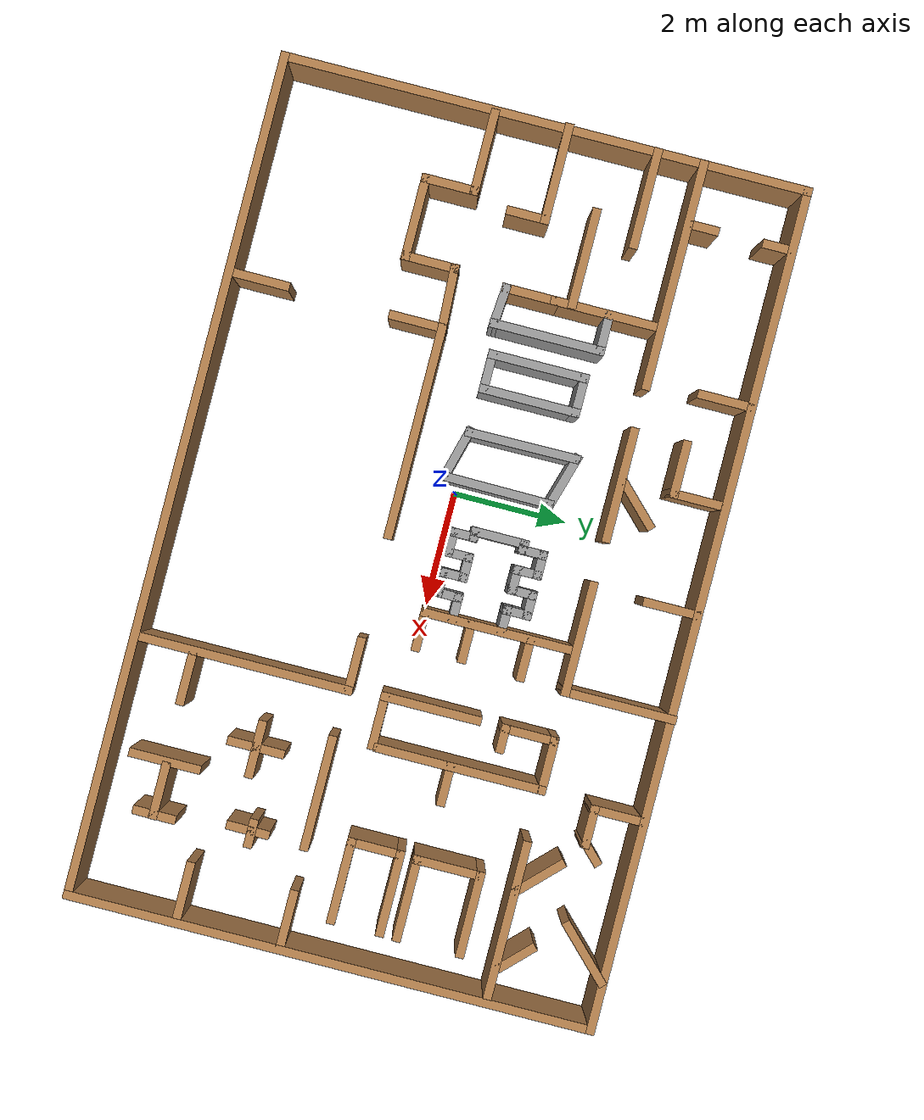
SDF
<sdf version="1.6">
 <model name="room">
  <pose>0.8955 -0.0675 0 0 -0 0</pose>
  <link name="Wall_102">
   <collision name="Wall_102_Collision">
    <geometry><box><size>1.25 0.15 2.5</size></box></geometry>
    <pose>0 0 1.25 0 -0 0</pose>
   </collision>
   <visual name="Wall_102_Visual">
    <pose>0 0 1.25 0 -0 0</pose>
    <geometry><box><size>1.25 0.15 2.5</size></box></geometry>
    <material>
     <script><uri>file://media/materials/scripts/gazebo.material</uri><name>Gazebo/Wood</name></script>
     <ambient>1 1 1 1</ambient>
    </material>
    <meta><layer>0</layer></meta>
   </visual>
   <pose>6.0995 4.1165 0 0 -0 -2.35619</pose>
  </link>
  <link name="Wall_104">
   <collision name="Wall_104_Collision">
    <geometry><box><size>1 0.15 2.5</size></box></geometry>
    <pose>0 0 1.25 0 -0 0</pose>
   </collision>
   <visual name="Wall_104_Visual">
    <pose>0 0 1.25 0 -0 0</pose>
    <geometry><box><size>1 0.15 2.5</size></box></geometry>
    <material>
     <script><uri>file://media/materials/scripts/gazebo.material</uri><name>Gazebo/Wood</name></script>
     <ambient>1 1 1 1</ambient>
    </material>
    <meta><layer>0</layer></meta>
   </visual>
   <pose>5.044 3.057 0 0 -0 2.35619</pose>
  </link>
  <link name="Wall_107">
   <collision name="Wall_107_Collision">
    <geometry><box><size>0.75 0.15 2.5</size></box></geometry>
    <pose>0 0 1.25 0 -0 0</pose>
   </collision>
   <visual name="Wall_107_Visual">
    <pose>0 0 1.25 0 -0 0</pose>
    <geometry><box><size>0.75 0.15 2.5</size></box></geometry>
    <material>
     <script><uri>file://media/materials/scripts/gazebo.material</uri><name>Gazebo/Wood</name></script>
     <ambient>1 1 1 1</ambient>
    </material>
    <meta><layer>0</layer></meta>
   </visual>
   <pose>6.4485 3.0245 0 0 -0 -0.785398</pose>
  </link>
  <link name="Wall_11">
   <collision name="Wall_11_Collision">
    <geometry><box><size>0.5 0.15 2.5</size></box></geometry>
    <pose>0 0 1.25 0 -0 0</pose>
   </collision>
   <visual name="Wall_11_Visual">
    <pose>0 0 1.25 0 -0 0</pose>
    <geometry><box><size>0.5 0.15 2.5</size></box></geometry>
    <material>
     <script><uri>file://media/materials/scripts/gazebo.material</uri><name>Gazebo/Wood</name></script>
     <ambient>0.921569 0.807843 0.615686 1</ambient>
    </material>
    <meta><layer>0</layer></meta>
   </visual>
   <pose>-6.2495 4.2745 0 0 -0 1.5708</pose>
  </link>
  <link name="Wall_112">
   <collision name="Wall_112_Collision">
    <geometry><box><size>0.5 0.15 2.5</size></box></geometry>
    <pose>0 0 1.25 0 -0 0</pose>
   </collision>
   <visual name="Wall_112_Visual">
    <pose>0 0 1.25 0 -0 0</pose>
    <geometry><box><size>0.5 0.15 2.5</size></box></geometry>
    <material>
     <script><uri>file://media/materials/scripts/gazebo.material</uri><name>Gazebo/Wood</name></script>
     <ambient>1 1 1 1</ambient>
    </material>
    <meta><layer>0</layer></meta>
   </visual>
   <pose>2.9305 1.8815 0 0 -0 0</pose>
  </link>
  <link name="Wall_115">
   <collision name="Wall_115_Collision">
    <geometry><box><size>0.75 0.15 2.5</size></box></geometry>
    <pose>0 0 1.25 0 -0 0</pose>
   </collision>
   <visual name="Wall_115_Visual">
    <pose>0 0 1.25 0 -0 0</pose>
    <geometry><box><size>0.75 0.15 2.5</size></box></geometry>
    <material>
     <script><uri>file://media/materials/scripts/gazebo.material</uri><name>Gazebo/Wood</name></script>
     <ambient>1 1 1 1</ambient>
    </material>
    <meta><layer>0</layer></meta>
   </visual>
   <pose>3.9985 3.6755 0 0 -0 0</pose>
  </link>
  <link name="Wall_116">
   <collision name="Wall_116_Collision">
    <geometry><box><size>0.5 0.15 2.5</size></box></geometry>
    <pose>0 0 1.25 0 -0 0</pose>
   </collision>
   <visual name="Wall_116_Visual">
    <pose>0 0 1.25 0 -0 0</pose>
    <geometry><box><size>0.5 0.15 2.5</size></box></geometry>
    <material>
     <script><uri>file://media/materials/scripts/gazebo.material</uri><name>Gazebo/Wood</name></script>
     <ambient>1 1 1 1</ambient>
    </material>
    <meta><layer>0</layer></meta>
   </visual>
   <pose>4.422 3.799 0 0 -0 0.785398</pose>
  </link>
  <link name="Wall_118">
   <collision name="Wall_118_Collision">
    <geometry><box><size>2 0.15 2.5</size></box></geometry>
    <pose>0 0 1.25 0 -0 0</pose>
   </collision>
   <visual name="Wall_118_Visual">
    <pose>0 0 1.25 0 -0 0</pose>
    <geometry><box><size>2 0.15 2.5</size></box></geometry>
    <material>
     <script><uri>file://media/materials/scripts/gazebo.material</uri><name>Gazebo/Grey</name></script>
     <ambient>1 1 1 1</ambient>
    </material>
    <meta><layer>0</layer></meta>
   </visual>
   <pose>-1.93559 0.967643 0 0 -0 -1.56262</pose>
  </link>
  <link name="Wall_119">
   <collision name="Wall_119_Collision">
    <geometry><box><size>1 0.15 2.5</size></box></geometry>
    <pose>0 0 1.25 0 -0 0</pose>
   </collision>
   <visual name="Wall_119_Visual">
    <pose>0 0 1.25 0 -0 0</pose>
    <geometry><box><size>1 0.15 2.5</size></box></geometry>
    <material>
     <script><uri>file://media/materials/scripts/gazebo.material</uri><name>Gazebo/Grey</name></script>
     <ambient>1 1 1 1</ambient>
    </material>
    <meta><layer>0</layer></meta>
   </visual>
   <pose>-1.53264 -0.067355 0 0 -0 -0.261799</pose>
  </link>
  <link name="Wall_120">
   <collision name="Wall_120_Collision">
    <geometry><box><size>1.97005 0.15 2.5</size></box></geometry>
    <pose>0 0 1.25 0 -0 0</pose>
   </collision>
   <visual name="Wall_120_Visual">
    <pose>0 0 1.25 0 -0 0</pose>
    <geometry><box><size>1.97005 0.15 2.5</size></box></geometry>
    <material>
     <script><uri>file://media/materials/scripts/gazebo.material</uri><name>Gazebo/Grey</name></script>
     <ambient>1 1 1 1</ambient>
    </material>
    <meta><layer>0</layer></meta>
   </visual>
   <pose>-1.10008 0.732645 0 0 -0 1.56319</pose>
  </link>
  <link name="Wall_121">
   <collision name="Wall_121_Collision">
    <geometry><box><size>1.036 0.15 2.5</size></box></geometry>
    <pose>0 0 1.25 0 -0 0</pose>
   </collision>
   <visual name="Wall_121_Visual">
    <pose>0 0 1.25 0 -0 0</pose>
    <geometry><box><size>1.036 0.15 2.5</size></box></geometry>
    <material>
     <script><uri>file://media/materials/scripts/gazebo.material</uri><name>Gazebo/Grey</name></script>
     <ambient>1 1 1 1</ambient>
    </material>
    <meta><layer>0</layer></meta>
   </visual>
   <pose>-1.51816 1.78277 0 0 -0 2.85554</pose>
  </link>
  <link name="Wall_123">
   <collision name="Wall_123_Collision">
    <geometry><box><size>0.75 0.15 2.5</size></box></geometry>
    <pose>0 0 1.25 0 -0 0</pose>
   </collision>
   <visual name="Wall_123_Visual">
    <pose>0 0 1.25 0 -0 0</pose>
    <geometry><box><size>0.75 0.15 2.5</size></box></geometry>
    <material>
     <script><uri>file://media/materials/scripts/gazebo.material</uri><name>Gazebo/Grey</name></script>
     <ambient>1 1 1 1</ambient>
    </material>
    <meta><layer>0</layer></meta>
   </visual>
   <pose>-4.10944 1.82992 0 0 -0 0</pose>
  </link>
  <link name="Wall_124">
   <collision name="Wall_124_Collision">
    <geometry><box><size>2 0.15 2.5</size></box></geometry>
    <pose>0 0 1.25 0 -0 0</pose>
   </collision>
   <visual name="Wall_124_Visual">
    <pose>0 0 1.25 0 -0 0</pose>
    <geometry><box><size>2 0.15 2.5</size></box></geometry>
    <material>
     <script><uri>file://media/materials/scripts/gazebo.material</uri><name>Gazebo/Grey</name></script>
     <ambient>1 1 1 1</ambient>
    </material>
    <meta><layer>0</layer></meta>
   </visual>
   <pose>-3.80944 0.904922 0 0 -0 -1.5708</pose>
  </link>
  <link name="Wall_127">
   <collision name="Wall_127_Collision">
    <geometry><box><size>0.777182 0.15 2.5</size></box></geometry>
    <pose>0 0 1.25 0 -0 0</pose>
   </collision>
   <visual name="Wall_127_Visual">
    <pose>0 0 1.25 0 -0 0</pose>
    <geometry><box><size>0.777182 0.15 2.5</size></box></geometry>
    <material>
     <script><uri>file://media/materials/scripts/gazebo.material</uri><name>Gazebo/Grey</name></script>
     <ambient>1 1 1 1</ambient>
    </material>
    <meta><layer>0</layer></meta>
   </visual>
   <pose>-4.12197 0.005711 0 0 -0 -0.082331</pose>
  </link>
  <link name="Wall_129">
   <collision name="Wall_129_Collision">
    <geometry><box><size>1.75 0.15 2.5</size></box></geometry>
    <pose>0 0 1.25 0 -0 0</pose>
   </collision>
   <visual name="Wall_129_Visual">
    <pose>0 0 1.25 0 -0 0</pose>
    <geometry><box><size>1.75 0.15 2.5</size></box></geometry>
    <material>
     <script><uri>file://media/materials/scripts/gazebo.material</uri><name>Gazebo/Grey</name></script>
     <ambient>1 1 1 1</ambient>
    </material>
    <meta><layer>0</layer></meta>
   </visual>
   <pose>-3.29698 0.889465 0 0 -0 -1.5708</pose>
  </link>
  <link name="Wall_13">
   <collision name="Wall_13_Collision">
    <geometry><box><size>0.5 0.15 2.5</size></box></geometry>
    <pose>0 0 1.25 0 -0 0</pose>
   </collision>
   <visual name="Wall_13_Visual">
    <pose>0 0 1.25 0 -0 0</pose>
    <geometry><box><size>0.5 0.15 2.5</size></box></geometry>
    <material>
     <script><uri>file://media/materials/scripts/gazebo.material</uri><name>Gazebo/Wood</name></script>
     <ambient>0.921569 0.807843 0.615686 1</ambient>
    </material>
    <meta><layer>0</layer></meta>
   </visual>
   <pose>-6.2495 3.0165 0 0 -0 -1.5708</pose>
  </link>
  <link name="Wall_130">
   <collision name="Wall_130_Collision">
    <geometry><box><size>0.75 0.15 2.5</size></box></geometry>
    <pose>0 0 1.25 0 -0 0</pose>
   </collision>
   <visual name="Wall_130_Visual">
    <pose>0 0 1.25 0 -0 0</pose>
    <geometry><box><size>0.75 0.15 2.5</size></box></geometry>
    <material>
     <script><uri>file://media/materials/scripts/gazebo.material</uri><name>Gazebo/Grey</name></script>
     <ambient>1 1 1 1</ambient>
    </material>
    <meta><layer>0</layer></meta>
   </visual>
   <pose>-2.99698 0.089465 0 0 -0 0</pose>
  </link>
  <link name="Wall_131">
   <collision name="Wall_131_Collision">
    <geometry><box><size>1.75 0.15 2.5</size></box></geometry>
    <pose>0 0 1.25 0 -0 0</pose>
   </collision>
   <visual name="Wall_131_Visual">
    <pose>0 0 1.25 0 -0 0</pose>
    <geometry><box><size>1.75 0.15 2.5</size></box></geometry>
    <material>
     <script><uri>file://media/materials/scripts/gazebo.material</uri><name>Gazebo/Grey</name></script>
     <ambient>1 1 1 1</ambient>
    </material>
    <meta><layer>0</layer></meta>
   </visual>
   <pose>-2.69698 0.889465 0 0 -0 1.5708</pose>
  </link>
  <link name="Wall_132">
   <collision name="Wall_132_Collision">
    <geometry><box><size>0.75 0.15 2.5</size></box></geometry>
    <pose>0 0 1.25 0 -0 0</pose>
   </collision>
   <visual name="Wall_132_Visual">
    <pose>0 0 1.25 0 -0 0</pose>
    <geometry><box><size>0.75 0.15 2.5</size></box></geometry>
    <material>
     <script><uri>file://media/materials/scripts/gazebo.material</uri><name>Gazebo/Grey</name></script>
     <ambient>1 1 1 1</ambient>
    </material>
    <meta><layer>0</layer></meta>
   </visual>
   <pose>-2.99698 1.68946 0 0 -0 3.14159</pose>
  </link>
  <link name="Wall_134">
   <collision name="Wall_134_Collision">
    <geometry><box><size>0.5 0.15 2.5</size></box></geometry>
    <pose>0 0 1.25 0 -0 0</pose>
   </collision>
   <visual name="Wall_134_Visual">
    <pose>0 0 1.25 0 -0 0</pose>
    <geometry><box><size>0.5 0.15 2.5</size></box></geometry>
    <material>
     <script><uri>file://media/materials/scripts/gazebo.material</uri><name>Gazebo/Grey</name></script>
     <ambient>1 1 1 1</ambient>
    </material>
    <meta><layer>0</layer></meta>
   </visual>
   <pose>-0.236104 1.58364 0 0 -0 -1.5708</pose>
  </link>
  <link name="Wall_135">
   <collision name="Wall_135_Collision">
    <geometry><box><size>0.25 0.15 2.5</size></box></geometry>
    <pose>0 0 1.25 0 -0 0</pose>
   </collision>
   <visual name="Wall_135_Visual">
    <pose>0 0 1.25 0 -0 0</pose>
    <geometry><box><size>0.25 0.15 2.5</size></box></geometry>
    <material>
     <script><uri>file://media/materials/scripts/gazebo.material</uri><name>Gazebo/Grey</name></script>
     <ambient>1 1 1 1</ambient>
    </material>
    <meta><layer>0</layer></meta>
   </visual>
   <pose>-0.286104 1.40864 0 0 -0 3.14159</pose>
  </link>
  <link name="Wall_136">
   <collision name="Wall_136_Collision">
    <geometry><box><size>1 0.15 2.5</size></box></geometry>
    <pose>0 0 1.25 0 -0 0</pose>
   </collision>
   <visual name="Wall_136_Visual">
    <pose>0 0 1.25 0 -0 0</pose>
    <geometry><box><size>1 0.15 2.5</size></box></geometry>
    <material>
     <script><uri>file://media/materials/scripts/gazebo.material</uri><name>Gazebo/Grey</name></script>
     <ambient>1 1 1 1</ambient>
    </material>
    <meta><layer>0</layer></meta>
   </visual>
   <pose>-0.336104 0.983637 0 0 -0 -1.5708</pose>
  </link>
  <link name="Wall_137">
   <collision name="Wall_137_Collision">
    <geometry><box><size>0.25 0.15 2.5</size></box></geometry>
    <pose>0 0 1.25 0 -0 0</pose>
   </collision>
   <visual name="Wall_137_Visual">
    <pose>0 0 1.25 0 -0 0</pose>
    <geometry><box><size>0.25 0.15 2.5</size></box></geometry>
    <material>
     <script><uri>file://media/materials/scripts/gazebo.material</uri><name>Gazebo/Grey</name></script>
     <ambient>1 1 1 1</ambient>
    </material>
    <meta><layer>0</layer></meta>
   </visual>
   <pose>-0.286104 0.558637 0 0 -0 0</pose>
  </link>
  <link name="Wall_138">
   <collision name="Wall_138_Collision">
    <geometry><box><size>0.5 0.15 2.5</size></box></geometry>
    <pose>0 0 1.25 0 -0 0</pose>
   </collision>
   <visual name="Wall_138_Visual">
    <pose>0 0 1.25 0 -0 0</pose>
    <geometry><box><size>0.5 0.15 2.5</size></box></geometry>
    <material>
     <script><uri>file://media/materials/scripts/gazebo.material</uri><name>Gazebo/Grey</name></script>
     <ambient>1 1 1 1</ambient>
    </material>
    <meta><layer>0</layer></meta>
   </visual>
   <pose>-0.236104 0.383637 0 0 -0 -1.5708</pose>
  </link>
  <link name="Wall_139">
   <collision name="Wall_139_Collision">
    <geometry><box><size>0.5 0.15 2.5</size></box></geometry>
    <pose>0 0 1.25 0 -0 0</pose>
   </collision>
   <visual name="Wall_139_Visual">
    <pose>0 0 1.25 0 -0 0</pose>
    <geometry><box><size>0.5 0.15 2.5</size></box></geometry>
    <material>
     <script><uri>file://media/materials/scripts/gazebo.material</uri><name>Gazebo/Grey</name></script>
     <ambient>1 1 1 1</ambient>
    </material>
    <meta><layer>0</layer></meta>
   </visual>
   <pose>-0.061104 0.208637 0 0 -0 0</pose>
  </link>
  <link name="Wall_140">
   <collision name="Wall_140_Collision">
    <geometry><box><size>0.5 0.15 2.5</size></box></geometry>
    <pose>0 0 1.25 0 -0 0</pose>
   </collision>
   <visual name="Wall_140_Visual">
    <pose>0 0 1.25 0 -0 0</pose>
    <geometry><box><size>0.5 0.15 2.5</size></box></geometry>
    <material>
     <script><uri>file://media/materials/scripts/gazebo.material</uri><name>Gazebo/Grey</name></script>
     <ambient>1 1 1 1</ambient>
    </material>
    <meta><layer>0</layer></meta>
   </visual>
   <pose>0.113896 0.383637 0 0 -0 1.5708</pose>
  </link>
  <link name="Wall_141">
   <collision name="Wall_141_Collision">
    <geometry><box><size>0.5 0.15 2.5</size></box></geometry>
    <pose>0 0 1.25 0 -0 0</pose>
   </collision>
   <visual name="Wall_141_Visual">
    <pose>0 0 1.25 0 -0 0</pose>
    <geometry><box><size>0.5 0.15 2.5</size></box></geometry>
    <material>
     <script><uri>file://media/materials/scripts/gazebo.material</uri><name>Gazebo/Grey</name></script>
     <ambient>1 1 1 1</ambient>
    </material>
    <meta><layer>0</layer></meta>
   </visual>
   <pose>0.288896 0.558637 0 0 -0 0</pose>
  </link>
  <link name="Wall_142">
   <collision name="Wall_142_Collision">
    <geometry><box><size>0.5 0.15 2.5</size></box></geometry>
    <pose>0 0 1.25 0 -0 0</pose>
   </collision>
   <visual name="Wall_142_Visual">
    <pose>0 0 1.25 0 -0 0</pose>
    <geometry><box><size>0.5 0.15 2.5</size></box></geometry>
    <material>
     <script><uri>file://media/materials/scripts/gazebo.material</uri><name>Gazebo/Grey</name></script>
     <ambient>1 1 1 1</ambient>
    </material>
    <meta><layer>0</layer></meta>
   </visual>
   <pose>0.463896 0.383637 0 0 -0 -1.5708</pose>
  </link>
  <link name="Wall_143">
   <collision name="Wall_143_Collision">
    <geometry><box><size>0.5 0.15 2.5</size></box></geometry>
    <pose>0 0 1.25 0 -0 0</pose>
   </collision>
   <visual name="Wall_143_Visual">
    <pose>0 0 1.25 0 -0 0</pose>
    <geometry><box><size>0.5 0.15 2.5</size></box></geometry>
    <material>
     <script><uri>file://media/materials/scripts/gazebo.material</uri><name>Gazebo/Grey</name></script>
     <ambient>1 1 1 1</ambient>
    </material>
    <meta><layer>0</layer></meta>
   </visual>
   <pose>0.638896 0.208637 0 0 -0 0</pose>
  </link>
  <link name="Wall_144">
   <collision name="Wall_144_Collision">
    <geometry><box><size>0.5 0.15 2.5</size></box></geometry>
    <pose>0 0 1.25 0 -0 0</pose>
   </collision>
   <visual name="Wall_144_Visual">
    <pose>0 0 1.25 0 -0 0</pose>
    <geometry><box><size>0.5 0.15 2.5</size></box></geometry>
    <material>
     <script><uri>file://media/materials/scripts/gazebo.material</uri><name>Gazebo/Grey</name></script>
     <ambient>1 1 1 1</ambient>
    </material>
    <meta><layer>0</layer></meta>
   </visual>
   <pose>0.813896 0.383637 0 0 -0 1.5708</pose>
  </link>
  <link name="Wall_145">
   <collision name="Wall_145_Collision">
    <geometry><box><size>0.5 0.15 2.5</size></box></geometry>
    <pose>0 0 1.25 0 -0 0</pose>
   </collision>
   <visual name="Wall_145_Visual">
    <pose>0 0 1.25 0 -0 0</pose>
    <geometry><box><size>0.5 0.15 2.5</size></box></geometry>
    <material>
     <script><uri>file://media/materials/scripts/gazebo.material</uri><name>Gazebo/Grey</name></script>
     <ambient>1 1 1 1</ambient>
    </material>
    <meta><layer>0</layer></meta>
   </visual>
   <pose>0.988896 0.558637 0 0 -0 0</pose>
  </link>
  <link name="Wall_147">
   <collision name="Wall_147_Collision">
    <geometry><box><size>0.5 0.15 2.5</size></box></geometry>
    <pose>0 0 1.25 0 -0 0</pose>
   </collision>
   <visual name="Wall_147_Visual">
    <pose>0 0 1.25 0 -0 0</pose>
    <geometry><box><size>0.5 0.15 2.5</size></box></geometry>
    <material>
     <script><uri>file://media/materials/scripts/gazebo.material</uri><name>Gazebo/Grey</name></script>
     <ambient>1 1 1 1</ambient>
    </material>
    <meta><layer>0</layer></meta>
   </visual>
   <pose>-0.061104 1.75864 0 0 -0 0</pose>
  </link>
  <link name="Wall_148">
   <collision name="Wall_148_Collision">
    <geometry><box><size>0.5 0.15 2.5</size></box></geometry>
    <pose>0 0 1.25 0 -0 0</pose>
   </collision>
   <visual name="Wall_148_Visual">
    <pose>0 0 1.25 0 -0 0</pose>
    <geometry><box><size>0.5 0.15 2.5</size></box></geometry>
    <material>
     <script><uri>file://media/materials/scripts/gazebo.material</uri><name>Gazebo/Grey</name></script>
     <ambient>1 1 1 1</ambient>
    </material>
    <meta><layer>0</layer></meta>
   </visual>
   <pose>0.113896 1.58364 0 0 -0 -1.5708</pose>
  </link>
  <link name="Wall_149">
   <collision name="Wall_149_Collision">
    <geometry><box><size>0.5 0.15 2.5</size></box></geometry>
    <pose>0 0 1.25 0 -0 0</pose>
   </collision>
   <visual name="Wall_149_Visual">
    <pose>0 0 1.25 0 -0 0</pose>
    <geometry><box><size>0.5 0.15 2.5</size></box></geometry>
    <material>
     <script><uri>file://media/materials/scripts/gazebo.material</uri><name>Gazebo/Grey</name></script>
     <ambient>1 1 1 1</ambient>
    </material>
    <meta><layer>0</layer></meta>
   </visual>
   <pose>0.288896 1.40864 0 0 -0 0</pose>
  </link>
  <link name="Wall_15">
   <collision name="Wall_15_Collision">
    <geometry><box><size>4 0.15 2.5</size></box></geometry>
    <pose>0 0 1.25 0 -0 0</pose>
   </collision>
   <visual name="Wall_15_Visual">
    <pose>0 0 1.25 0 -0 0</pose>
    <geometry><box><size>4 0.15 2.5</size></box></geometry>
    <material>
     <script><uri>file://media/materials/scripts/gazebo.material</uri><name>Gazebo/Wood</name></script>
     <ambient>0.921569 0.807843 0.615686 1</ambient>
    </material>
    <meta><layer>0</layer></meta>
   </visual>
   <pose>-5.3595 2.7315 0 0 -0 0</pose>
  </link>
  <link name="Wall_150">
   <collision name="Wall_150_Collision">
    <geometry><box><size>0.5 0.15 2.5</size></box></geometry>
    <pose>0 0 1.25 0 -0 0</pose>
   </collision>
   <visual name="Wall_150_Visual">
    <pose>0 0 1.25 0 -0 0</pose>
    <geometry><box><size>0.5 0.15 2.5</size></box></geometry>
    <material>
     <script><uri>file://media/materials/scripts/gazebo.material</uri><name>Gazebo/Grey</name></script>
     <ambient>1 1 1 1</ambient>
    </material>
    <meta><layer>0</layer></meta>
   </visual>
   <pose>0.463896 1.58364 0 0 -0 1.5708</pose>
  </link>
  <link name="Wall_151">
   <collision name="Wall_151_Collision">
    <geometry><box><size>0.5 0.15 2.5</size></box></geometry>
    <pose>0 0 1.25 0 -0 0</pose>
   </collision>
   <visual name="Wall_151_Visual">
    <pose>0 0 1.25 0 -0 0</pose>
    <geometry><box><size>0.5 0.15 2.5</size></box></geometry>
    <material>
     <script><uri>file://media/materials/scripts/gazebo.material</uri><name>Gazebo/Grey</name></script>
     <ambient>1 1 1 1</ambient>
    </material>
    <meta><layer>0</layer></meta>
   </visual>
   <pose>0.638896 1.75864 0 0 -0 0</pose>
  </link>
  <link name="Wall_152">
   <collision name="Wall_152_Collision">
    <geometry><box><size>0.5 0.15 2.5</size></box></geometry>
    <pose>0 0 1.25 0 -0 0</pose>
   </collision>
   <visual name="Wall_152_Visual">
    <pose>0 0 1.25 0 -0 0</pose>
    <geometry><box><size>0.5 0.15 2.5</size></box></geometry>
    <material>
     <script><uri>file://media/materials/scripts/gazebo.material</uri><name>Gazebo/Grey</name></script>
     <ambient>1 1 1 1</ambient>
    </material>
    <meta><layer>0</layer></meta>
   </visual>
   <pose>0.813896 1.58364 0 0 -0 -1.5708</pose>
  </link>
  <link name="Wall_153">
   <collision name="Wall_153_Collision">
    <geometry><box><size>0.5 0.15 2.5</size></box></geometry>
    <pose>0 0 1.25 0 -0 0</pose>
   </collision>
   <visual name="Wall_153_Visual">
    <pose>0 0 1.25 0 -0 0</pose>
    <geometry><box><size>0.5 0.15 2.5</size></box></geometry>
    <material>
     <script><uri>file://media/materials/scripts/gazebo.material</uri><name>Gazebo/Grey</name></script>
     <ambient>1 1 1 1</ambient>
    </material>
    <meta><layer>0</layer></meta>
   </visual>
   <pose>0.988896 1.40864 0 0 -0 0</pose>
  </link>
  <link name="Wall_157">
   <collision name="Wall_157_Collision">
    <geometry><box><size>1.17417 0.15 2.5</size></box></geometry>
    <pose>0 0 1.25 0 -0 0</pose>
   </collision>
   <visual name="Wall_157_Visual">
    <pose>0 0 1.25 0 -0 0</pose>
    <geometry><box><size>1.17417 0.15 2.5</size></box></geometry>
    <material>
     <script><uri>file://media/materials/scripts/gazebo.material</uri><name>Gazebo/Wood</name></script>
     <ambient>1 1 1 1</ambient>
    </material>
    <meta><layer>0</layer></meta>
   </visual>
   <pose>-4.027 -0.868 0 0 -0 -3.09373</pose>
  </link>
  <link name="Wall_159">
   <collision name="Wall_159_Collision">
    <geometry><box><size>1 0.15 2.5</size></box></geometry>
    <pose>0 0 1.25 0 -0 0</pose>
   </collision>
   <visual name="Wall_159_Visual">
    <pose>0 0 1.25 0 -0 0</pose>
    <geometry><box><size>1 0.15 2.5</size></box></geometry>
    <material>
     <script><uri>file://media/materials/scripts/gazebo.material</uri><name>Gazebo/Wood</name></script>
     <ambient>1 1 1 1</ambient>
    </material>
    <meta><layer>0</layer></meta>
   </visual>
   <pose>-3.5155 -1.2685 0 0 -0 -1.5708</pose>
  </link>
  <link name="Wall_161">
   <collision name="Wall_161_Collision">
    <geometry><box><size>1 0.15 2.5</size></box></geometry>
    <pose>0 0 1.25 0 -0 0</pose>
   </collision>
   <visual name="Wall_161_Visual">
    <pose>0 0 1.25 0 -0 0</pose>
    <geometry><box><size>1 0.15 2.5</size></box></geometry>
    <material>
     <script><uri>file://media/materials/scripts/gazebo.material</uri><name>Gazebo/Wood</name></script>
     <ambient>1 1 1 1</ambient>
    </material>
    <meta><layer>0</layer></meta>
   </visual>
   <pose>-3.5405 -4.0025 0 0 -0 -1.5708</pose>
  </link>
  <link name="Wall_163">
   <collision name="Wall_163_Collision">
    <geometry><box><size>1.75 0.15 2.5</size></box></geometry>
    <pose>0 0 1.25 0 -0 0</pose>
   </collision>
   <visual name="Wall_163_Visual">
    <pose>0 0 1.25 0 -0 0</pose>
    <geometry><box><size>1.75 0.15 2.5</size></box></geometry>
    <material>
     <script><uri>file://media/materials/scripts/gazebo.material</uri><name>Gazebo/Wood</name></script>
     <ambient>1 1 1 1</ambient>
    </material>
    <meta><layer>0</layer></meta>
   </visual>
   <pose>-6.4885 1.9325 0 0 -0 0</pose>
  </link>
  <link name="Wall_165">
   <collision name="Wall_165_Collision">
    <geometry><box><size>1.75 0.15 2.5</size></box></geometry>
    <pose>0 0 1.25 0 -0 0</pose>
   </collision>
   <visual name="Wall_165_Visual">
    <pose>0 0 1.25 0 -0 0</pose>
    <geometry><box><size>1.75 0.15 2.5</size></box></geometry>
    <material>
     <script><uri>file://media/materials/scripts/gazebo.material</uri><name>Gazebo/Wood</name></script>
     <ambient>1 1 1 1</ambient>
    </material>
    <meta><layer>0</layer></meta>
   </visual>
   <pose>-5.2475 1.1825 0 0 -0 3.14159</pose>
  </link>
  <link name="Wall_167">
   <collision name="Wall_167_Collision">
    <geometry><box><size>1.75 0.15 2.5</size></box></geometry>
    <pose>0 0 1.25 0 -0 0</pose>
   </collision>
   <visual name="Wall_167_Visual">
    <pose>0 0 1.25 0 -0 0</pose>
    <geometry><box><size>1.75 0.15 2.5</size></box></geometry>
    <material>
     <script><uri>file://media/materials/scripts/gazebo.material</uri><name>Gazebo/Wood</name></script>
     <ambient>1 1 1 1</ambient>
    </material>
    <meta><layer>0</layer></meta>
   </visual>
   <pose>-6.5145 0.3805 0 0 -0 0</pose>
  </link>
  <link name="Wall_169">
   <collision name="Wall_169_Collision">
    <geometry><box><size>0.75 0.15 2.5</size></box></geometry>
    <pose>0 0 1.25 0 -0 0</pose>
   </collision>
   <visual name="Wall_169_Visual">
    <pose>0 0 1.25 0 -0 0</pose>
    <geometry><box><size>0.75 0.15 2.5</size></box></geometry>
    <material>
     <script><uri>file://media/materials/scripts/gazebo.material</uri><name>Gazebo/Wood</name></script>
     <ambient>1 1 1 1</ambient>
    </material>
    <meta><layer>0</layer></meta>
   </visual>
   <pose>-5.7145 0.0805 0 0 -0 -1.5708</pose>
  </link>
  <link name="Wall_17">
   <collision name="Wall_17_Collision">
    <geometry><box><size>1 0.15 2.5</size></box></geometry>
    <pose>0 0 1.25 0 -0 0</pose>
   </collision>
   <visual name="Wall_17_Visual">
    <pose>0 0 1.25 0 -0 0</pose>
    <geometry><box><size>1 0.15 2.5</size></box></geometry>
    <material>
     <script><uri>file://media/materials/scripts/gazebo.material</uri><name>Gazebo/Wood</name></script>
     <ambient>0.921569 0.807843 0.615686 1</ambient>
    </material>
    <meta><layer>0</layer></meta>
   </visual>
   <pose>-3.5235 4.1005 0 0 -0 -1.5708</pose>
  </link>
  <link name="Wall_171">
   <collision name="Wall_171_Collision">
    <geometry><box><size>1 0.15 2.5</size></box></geometry>
    <pose>0 0 1.25 0 -0 0</pose>
   </collision>
   <visual name="Wall_171_Visual">
    <pose>0 0 1.25 0 -0 0</pose>
    <geometry><box><size>1 0.15 2.5</size></box></geometry>
    <material>
     <script><uri>file://media/materials/scripts/gazebo.material</uri><name>Gazebo/Wood</name></script>
     <ambient>1 1 1 1</ambient>
    </material>
    <meta><layer>0</layer></meta>
   </visual>
   <pose>4.1435 -2.1045 0 0 -0 0</pose>
  </link>
  <link name="Wall_173">
   <collision name="Wall_173_Collision">
    <geometry><box><size>1 0.15 2.5</size></box></geometry>
    <pose>0 0 1.25 0 -0 0</pose>
   </collision>
   <visual name="Wall_173_Visual">
    <pose>0 0 1.25 0 -0 0</pose>
    <geometry><box><size>1 0.15 2.5</size></box></geometry>
    <material>
     <script><uri>file://media/materials/scripts/gazebo.material</uri><name>Gazebo/Wood</name></script>
     <ambient>1 1 1 1</ambient>
    </material>
    <meta><layer>0</layer></meta>
   </visual>
   <pose>4.1125 -2.1085 0 0 -0 -1.5708</pose>
  </link>
  <link name="Wall_175">
   <collision name="Wall_175_Collision">
    <geometry><box><size>1 0.15 2.5</size></box></geometry>
    <pose>0 0 1.25 0 -0 0</pose>
   </collision>
   <visual name="Wall_175_Visual">
    <pose>0 0 1.25 0 -0 0</pose>
    <geometry><box><size>1 0.15 2.5</size></box></geometry>
    <material>
     <script><uri>file://media/materials/scripts/gazebo.material</uri><name>Gazebo/Wood</name></script>
     <ambient>1 1 1 1</ambient>
    </material>
    <meta><layer>0</layer></meta>
   </visual>
   <pose>5.2215 -3.4985 0 0 -0 0</pose>
  </link>
  <link name="Wall_177">
   <collision name="Wall_177_Collision">
    <geometry><box><size>1.25 0.15 2.5</size></box></geometry>
    <pose>0 0 1.25 0 -0 0</pose>
   </collision>
   <visual name="Wall_177_Visual">
    <pose>0 0 1.25 0 -0 0</pose>
    <geometry><box><size>1.25 0.15 2.5</size></box></geometry>
    <material>
     <script><uri>file://media/materials/scripts/gazebo.material</uri><name>Gazebo/Wood</name></script>
     <ambient>1 1 1 1</ambient>
    </material>
    <meta><layer>0</layer></meta>
   </visual>
   <pose>4.7175 -3.5355 0 0 -0 -1.5708</pose>
  </link>
  <link name="Wall_179">
   <collision name="Wall_179_Collision">
    <geometry><box><size>0.75 0.15 2.5</size></box></geometry>
    <pose>0 0 1.25 0 -0 0</pose>
   </collision>
   <visual name="Wall_179_Visual">
    <pose>0 0 1.25 0 -0 0</pose>
    <geometry><box><size>0.75 0.15 2.5</size></box></geometry>
    <material>
     <script><uri>file://media/materials/scripts/gazebo.material</uri><name>Gazebo/Wood</name></script>
     <ambient>1 1 1 1</ambient>
    </material>
    <meta><layer>0</layer></meta>
   </visual>
   <pose>5.6385 -3.4835 0 0 -0 -1.5708</pose>
  </link>
  <link name="Wall_181">
   <collision name="Wall_181_Collision">
    <geometry><box><size>0.5 0.15 2.5</size></box></geometry>
    <pose>0 0 1.25 0 -0 0</pose>
   </collision>
   <visual name="Wall_181_Visual">
    <pose>0 0 1.25 0 -0 0</pose>
    <geometry><box><size>0.5 0.15 2.5</size></box></geometry>
    <material>
     <script><uri>file://media/materials/scripts/gazebo.material</uri><name>Gazebo/Wood</name></script>
     <ambient>1 1 1 1</ambient>
    </material>
    <meta><layer>0</layer></meta>
   </visual>
   <pose>5.5375 -1.8285 0 0 -0 0</pose>
  </link>
  <link name="Wall_183">
   <collision name="Wall_183_Collision">
    <geometry><box><size>0.75 0.15 2.5</size></box></geometry>
    <pose>0 0 1.25 0 -0 0</pose>
   </collision>
   <visual name="Wall_183_Visual">
    <pose>0 0 1.25 0 -0 0</pose>
    <geometry><box><size>0.75 0.15 2.5</size></box></geometry>
    <material>
     <script><uri>file://media/materials/scripts/gazebo.material</uri><name>Gazebo/Wood</name></script>
     <ambient>1 1 1 1</ambient>
    </material>
    <meta><layer>0</layer></meta>
   </visual>
   <pose>5.4935 -1.8915 0 0 -0 -1.5708</pose>
  </link>
  <link name="Wall_185">
   <collision name="Wall_185_Collision">
    <geometry><box><size>1 0.15 2.5</size></box></geometry>
    <pose>0 0 1.25 0 -0 0</pose>
   </collision>
   <visual name="Wall_185_Visual">
    <pose>0 0 1.25 0 -0 0</pose>
    <geometry><box><size>1 0.15 2.5</size></box></geometry>
    <material>
     <script><uri>file://media/materials/scripts/gazebo.material</uri><name>Gazebo/Wood</name></script>
     <ambient>1 1 1 1</ambient>
    </material>
    <meta><layer>0</layer></meta>
   </visual>
   <pose>3.2445 -3.5345 0 0 -0 0</pose>
  </link>
  <link name="Wall_19">
   <collision name="Wall_19_Collision">
    <geometry><box><size>1 0.15 2.5</size></box></geometry>
    <pose>0 0 1.25 0 -0 0</pose>
   </collision>
   <visual name="Wall_19_Visual">
    <pose>0 0 1.25 0 -0 0</pose>
    <geometry><box><size>1 0.15 2.5</size></box></geometry>
    <material>
     <script><uri>file://media/materials/scripts/gazebo.material</uri><name>Gazebo/Wood</name></script>
     <ambient>0.921569 0.807843 0.615686 1</ambient>
    </material>
    <meta><layer>0</layer></meta>
   </visual>
   <pose>-2.2135 3.6395 0 0 -0 0</pose>
  </link>
  <link name="Wall_22">
   <collision name="Wall_22_Collision">
    <geometry><box><size>1 0.15 2.5</size></box></geometry>
    <pose>0 0 1.25 0 -0 0</pose>
   </collision>
   <visual name="Wall_22_Visual">
    <pose>0 0 1.25 0 -0 0</pose>
    <geometry><box><size>1 0.15 2.5</size></box></geometry>
    <material>
     <script><uri>file://media/materials/scripts/gazebo.material</uri><name>Gazebo/Wood</name></script>
     <ambient>0.921569 0.807843 0.615686 1</ambient>
    </material>
    <meta><layer>0</layer></meta>
   </visual>
   <pose>-1.7885 4.0645 0 0 -0 1.5708</pose>
  </link>
  <link name="Wall_24">
   <collision name="Wall_24_Collision">
    <geometry><box><size>1 0.15 2.5</size></box></geometry>
    <pose>0 0 1.25 0 -0 0</pose>
   </collision>
   <visual name="Wall_24_Visual">
    <pose>0 0 1.25 0 -0 0</pose>
    <geometry><box><size>1 0.15 2.5</size></box></geometry>
    <material>
     <script><uri>file://media/materials/scripts/gazebo.material</uri><name>Gazebo/Wood</name></script>
     <ambient>0.921569 0.807843 0.615686 1</ambient>
    </material>
    <meta><layer>0</layer></meta>
   </visual>
   <pose>0.0985 4.0885 0 0 -0 -1.5708</pose>
  </link>
  <link name="Wall_26">
   <collision name="Wall_26_Collision">
    <geometry><box><size>2 0.15 2.5</size></box></geometry>
    <pose>0 0 1.25 0 -0 0</pose>
   </collision>
   <visual name="Wall_26_Visual">
    <pose>0 0 1.25 0 -0 0</pose>
    <geometry><box><size>2 0.15 2.5</size></box></geometry>
    <material>
     <script><uri>file://media/materials/scripts/gazebo.material</uri><name>Gazebo/Wood</name></script>
     <ambient>0.921569 0.807843 0.615686 1</ambient>
    </material>
    <meta><layer>0</layer></meta>
   </visual>
   <pose>0.9775 2.7085 0 0 -0 0</pose>
  </link>
  <link name="Wall_27">
   <collision name="Wall_27_Collision">
    <geometry><box><size>2 0.15 2.5</size></box></geometry>
    <pose>0 0 1.25 0 -0 0</pose>
   </collision>
   <visual name="Wall_27_Visual">
    <pose>0 0 1.25 0 -0 0</pose>
    <geometry><box><size>2 0.15 2.5</size></box></geometry>
    <material>
     <script><uri>file://media/materials/scripts/gazebo.material</uri><name>Gazebo/Wood</name></script>
     <ambient>0.921569 0.807843 0.615686 1</ambient>
    </material>
    <meta><layer>0</layer></meta>
   </visual>
   <pose>1.9025 3.6335 0 0 -0 1.5708</pose>
  </link>
  <link name="Wall_29">
   <collision name="Wall_29_Collision">
    <geometry><box><size>1 0.15 2.5</size></box></geometry>
    <pose>0 0 1.25 0 -0 0</pose>
   </collision>
   <visual name="Wall_29_Visual">
    <pose>0 0 1.25 0 -0 0</pose>
    <geometry><box><size>1 0.15 2.5</size></box></geometry>
    <material>
     <script><uri>file://media/materials/scripts/gazebo.material</uri><name>Gazebo/Wood</name></script>
     <ambient>0.921569 0.807843 0.615686 1</ambient>
    </material>
    <meta><layer>0</layer></meta>
   </visual>
   <pose>3.6985 4.1005 0 0 -0 -1.5708</pose>
  </link>
  <link name="Wall_3">
   <collision name="Wall_3_Collision">
    <geometry><box><size>14.6 0.15 2.5</size></box></geometry>
    <pose>0 0 1.25 0 -0 0</pose>
   </collision>
   <visual name="Wall_3_Visual">
    <pose>0 0 1.25 0 -0 0</pose>
    <geometry><box><size>14.6 0.15 2.5</size></box></geometry>
    <material>
     <script><uri>file://media/materials/scripts/gazebo.material</uri><name>Gazebo/Wood</name></script>
     <ambient>0.760784 0.662745 0.627451 1</ambient>
    </material>
    <meta><layer>0</layer></meta>
   </visual>
   <pose>0.0895 4.5415 0 0 -0 0</pose>
  </link>
  <link name="Wall_31">
   <collision name="Wall_31_Collision">
    <geometry><box><size>1 0.15 2.5</size></box></geometry>
    <pose>0 0 1.25 0 -0 0</pose>
   </collision>
   <visual name="Wall_31_Visual">
    <pose>0 0 1.25 0 -0 0</pose>
    <geometry><box><size>1 0.15 2.5</size></box></geometry>
    <material>
     <script><uri>file://media/materials/scripts/gazebo.material</uri><name>Gazebo/Wood</name></script>
     <ambient>0.921569 0.807843 0.615686 1</ambient>
    </material>
    <meta><layer>0</layer></meta>
   </visual>
   <pose>3.1805 2.7315 0 0 -0 0</pose>
  </link>
  <link name="Wall_34">
   <collision name="Wall_34_Collision">
    <geometry><box><size>2.75 0.15 2.5</size></box></geometry>
    <pose>0 0 1.25 0 -0 0</pose>
   </collision>
   <visual name="Wall_34_Visual">
    <pose>0 0 1.25 0 -0 0</pose>
    <geometry><box><size>2.75 0.15 2.5</size></box></geometry>
    <material>
     <script><uri>file://media/materials/scripts/gazebo.material</uri><name>Gazebo/Wood</name></script>
     <ambient>0.921569 0.807843 0.615686 1</ambient>
    </material>
    <meta><layer>0</layer></meta>
   </visual>
   <pose>5.8725 2.7195 0 0 -0 0</pose>
  </link>
  <link name="Wall_36">
   <collision name="Wall_36_Collision">
    <geometry><box><size>1.5 0.15 2.5</size></box></geometry>
    <pose>0 0 1.25 0 -0 0</pose>
   </collision>
   <visual name="Wall_36_Visual">
    <pose>0 0 1.25 0 -0 0</pose>
    <geometry><box><size>1.5 0.15 2.5</size></box></geometry>
    <material>
     <script><uri>file://media/materials/scripts/gazebo.material</uri><name>Gazebo/Wood</name></script>
     <ambient>0.921569 0.807843 0.615686 1</ambient>
    </material>
    <meta><layer>0</layer></meta>
   </visual>
   <pose>-6.5635 -0.8925 0 0 -0 0</pose>
  </link>
  <link name="Wall_37">
   <collision name="Wall_37_Collision">
    <geometry><box><size>1 0.15 2.5</size></box></geometry>
    <pose>0 0 1.25 0 -0 0</pose>
   </collision>
   <visual name="Wall_37_Visual">
    <pose>0 0 1.25 0 -0 0</pose>
    <geometry><box><size>1 0.15 2.5</size></box></geometry>
    <material>
     <script><uri>file://media/materials/scripts/gazebo.material</uri><name>Gazebo/Wood</name></script>
     <ambient>0.921569 0.807843 0.615686 1</ambient>
    </material>
    <meta><layer>0</layer></meta>
   </visual>
   <pose>-5.8885 -1.3175 0 0 -0 -1.5708</pose>
  </link>
  <link name="Wall_38">
   <collision name="Wall_38_Collision">
    <geometry><box><size>1.5 0.15 2.5</size></box></geometry>
    <pose>0 0 1.25 0 -0 0</pose>
   </collision>
   <visual name="Wall_38_Visual">
    <pose>0 0 1.25 0 -0 0</pose>
    <geometry><box><size>1.5 0.15 2.5</size></box></geometry>
    <material>
     <script><uri>file://media/materials/scripts/gazebo.material</uri><name>Gazebo/Wood</name></script>
     <ambient>0.921569 0.807843 0.615686 1</ambient>
    </material>
    <meta><layer>0</layer></meta>
   </visual>
   <pose>-5.2135 -1.7425 0 0 -0 0</pose>
  </link>
  <link name="Wall_39">
   <collision name="Wall_39_Collision">
    <geometry><box><size>1 0.15 2.5</size></box></geometry>
    <pose>0 0 1.25 0 -0 0</pose>
   </collision>
   <visual name="Wall_39_Visual">
    <pose>0 0 1.25 0 -0 0</pose>
    <geometry><box><size>1 0.15 2.5</size></box></geometry>
    <material>
     <script><uri>file://media/materials/scripts/gazebo.material</uri><name>Gazebo/Wood</name></script>
     <ambient>0.921569 0.807843 0.615686 1</ambient>
    </material>
    <meta><layer>0</layer></meta>
   </visual>
   <pose>-4.5385 -1.3175 0 0 -0 1.5708</pose>
  </link>
  <link name="Wall_41">
   <collision name="Wall_41_Collision">
    <geometry><box><size>2 0.15 2.5</size></box></geometry>
    <pose>0 0 1.25 0 -0 0</pose>
   </collision>
   <visual name="Wall_41_Visual">
    <pose>0 0 1.25 0 -0 0</pose>
    <geometry><box><size>2 0.15 2.5</size></box></geometry>
    <material>
     <script><uri>file://media/materials/scripts/gazebo.material</uri><name>Gazebo/Wood</name></script>
     <ambient>0.921569 0.807843 0.615686 1</ambient>
    </material>
    <meta><layer>0</layer></meta>
   </visual>
   <pose>-4.4345 1.8065 0 0 -0 -1.5708</pose>
  </link>
  <link name="Wall_42">
   <collision name="Wall_42_Collision">
    <geometry><box><size>1 0.15 2.5</size></box></geometry>
    <pose>0 0 1.25 0 -0 0</pose>
   </collision>
   <visual name="Wall_42_Visual">
    <pose>0 0 1.25 0 -0 0</pose>
    <geometry><box><size>1 0.15 2.5</size></box></geometry>
    <material>
     <script><uri>file://media/materials/scripts/gazebo.material</uri><name>Gazebo/Wood</name></script>
     <ambient>0.921569 0.807843 0.615686 1</ambient>
    </material>
    <meta><layer>0</layer></meta>
   </visual>
   <pose>-4.4345 0.4565 0 0 -0 -1.5708</pose>
  </link>
  <link name="Wall_48">
   <collision name="Wall_48_Collision">
    <geometry><box><size>3 0.15 2.5</size></box></geometry>
    <pose>0 0 1.25 0 -0 0</pose>
   </collision>
   <visual name="Wall_48_Visual">
    <pose>0 0 1.25 0 -0 0</pose>
    <geometry><box><size>3 0.15 2.5</size></box></geometry>
    <material>
     <script><uri>file://media/materials/scripts/gazebo.material</uri><name>Gazebo/Wood</name></script>
     <ambient>0.921569 0.807843 0.615686 1</ambient>
    </material>
    <meta><layer>0</layer></meta>
   </visual>
   <pose>3.6055 1.3065 0 0 -0 -1.5708</pose>
  </link>
  <link name="Wall_5">
   <collision name="Wall_5_Collision">
    <geometry><box><size>9.25 0.15 2.5</size></box></geometry>
    <pose>0 0 1.25 0 -0 0</pose>
   </collision>
   <visual name="Wall_5_Visual">
    <pose>0 0 1.25 0 -0 0</pose>
    <geometry><box><size>9.25 0.15 2.5</size></box></geometry>
    <material>
     <script><uri>file://media/materials/scripts/gazebo.material</uri><name>Gazebo/Wood</name></script>
     <ambient>0.921569 0.807843 0.615686 1</ambient>
    </material>
    <meta><layer>0</layer></meta>
   </visual>
   <pose>7.3145 -0.0085 0 0 -0 -1.5708</pose>
  </link>
  <link name="Wall_50">
   <collision name="Wall_50_Collision">
    <geometry><box><size>2 0.15 2.5</size></box></geometry>
    <pose>0 0 1.25 0 -0 0</pose>
   </collision>
   <visual name="Wall_50_Visual">
    <pose>0 0 1.25 0 -0 0</pose>
    <geometry><box><size>2 0.15 2.5</size></box></geometry>
    <material>
     <script><uri>file://media/materials/scripts/gazebo.material</uri><name>Gazebo/Wood</name></script>
     <ambient>0.921569 0.807843 0.615686 1</ambient>
    </material>
    <meta><layer>0</layer></meta>
   </visual>
   <pose>4.5975 -0.8965 0 0 -0 0</pose>
  </link>
  <link name="Wall_52">
   <collision name="Wall_52_Collision">
    <geometry><box><size>1 0.15 2.5</size></box></geometry>
    <pose>0 0 1.25 0 -0 0</pose>
   </collision>
   <visual name="Wall_52_Visual">
    <pose>0 0 1.25 0 -0 0</pose>
    <geometry><box><size>1 0.15 2.5</size></box></geometry>
    <material>
     <script><uri>file://media/materials/scripts/gazebo.material</uri><name>Gazebo/Wood</name></script>
     <ambient>0.921569 0.807843 0.615686 1</ambient>
    </material>
    <meta><layer>0</layer></meta>
   </visual>
   <pose>6.7775 -0.8735 0 0 -0 0</pose>
  </link>
  <link name="Wall_54">
   <collision name="Wall_54_Collision">
    <geometry><box><size>1 0.15 2.5</size></box></geometry>
    <pose>0 0 1.25 0 -0 0</pose>
   </collision>
   <visual name="Wall_54_Visual">
    <pose>0 0 1.25 0 -0 0</pose>
    <geometry><box><size>1 0.15 2.5</size></box></geometry>
    <material>
     <script><uri>file://media/materials/scripts/gazebo.material</uri><name>Gazebo/Wood</name></script>
     <ambient>1 1 1 1</ambient>
    </material>
    <meta><layer>0</layer></meta>
   </visual>
   <pose>6.7545 -2.6795 0 0 -0 0</pose>
  </link>
  <link name="Wall_58">
   <collision name="Wall_58_Collision">
    <geometry><box><size>2 0.15 2.5</size></box></geometry>
    <pose>0 0 1.25 0 -0 0</pose>
   </collision>
   <visual name="Wall_58_Visual">
    <pose>0 0 1.25 0 -0 0</pose>
    <geometry><box><size>2 0.15 2.5</size></box></geometry>
    <material>
     <script><uri>file://media/materials/scripts/gazebo.material</uri><name>Gazebo/Wood</name></script>
     <ambient>1 1 1 1</ambient>
    </material>
    <meta><layer>0</layer></meta>
   </visual>
   <pose>-1.7045 2.7255 0 0 -0 0</pose>
  </link>
  <link name="Wall_6">
   <collision name="Wall_6_Collision">
    <geometry><box><size>14.75 0.15 2.5</size></box></geometry>
    <pose>0 0 1.25 0 -0 0</pose>
   </collision>
   <visual name="Wall_6_Visual">
    <pose>0 0 1.25 0 -0 0</pose>
    <geometry><box><size>14.75 0.15 2.5</size></box></geometry>
    <material>
     <script><uri>file://media/materials/scripts/gazebo.material</uri><name>Gazebo/Wood</name></script>
     <ambient>0.921569 0.807843 0.615686 1</ambient>
    </material>
    <meta><layer>0</layer></meta>
   </visual>
   <pose>0.0145 -4.5585 0 0 -0 3.14159</pose>
  </link>
  <link name="Wall_62">
   <collision name="Wall_62_Collision">
    <geometry><box><size>3.75 0.15 2.5</size></box></geometry>
    <pose>0 0 1.25 0 -0 0</pose>
   </collision>
   <visual name="Wall_62_Visual">
    <pose>0 0 1.25 0 -0 0</pose>
    <geometry><box><size>3.75 0.15 2.5</size></box></geometry>
    <material>
     <script><uri>file://media/materials/scripts/gazebo.material</uri><name>Gazebo/Wood</name></script>
     <ambient>1 1 1 1</ambient>
    </material>
    <meta><layer>0</layer></meta>
   </visual>
   <pose>2.7925 -2.6435 0 0 -0 -1.5708</pose>
  </link>
  <link name="Wall_64">
   <collision name="Wall_64_Collision">
    <geometry><box><size>3.75 0.15 2.5</size></box></geometry>
    <pose>0 0 1.25 0 -0 0</pose>
   </collision>
   <visual name="Wall_64_Visual">
    <pose>0 0 1.25 0 -0 0</pose>
    <geometry><box><size>3.75 0.15 2.5</size></box></geometry>
    <material>
     <script><uri>file://media/materials/scripts/gazebo.material</uri><name>Gazebo/Wood</name></script>
     <ambient>1 1 1 1</ambient>
    </material>
    <meta><layer>0</layer></meta>
   </visual>
   <pose>-1.7155 -0.8435 0 0 -0 0</pose>
  </link>
  <link name="Wall_69">
   <collision name="Wall_69_Collision">
    <geometry><box><size>1 0.15 2.5</size></box></geometry>
    <pose>0 0 1.25 0 -0 0</pose>
   </collision>
   <visual name="Wall_69_Visual">
    <pose>0 0 1.25 0 -0 0</pose>
    <geometry><box><size>1 0.15 2.5</size></box></geometry>
    <material>
     <script><uri>file://media/materials/scripts/gazebo.material</uri><name>Gazebo/Wood</name></script>
     <ambient>1 1 1 1</ambient>
    </material>
    <meta><layer>0</layer></meta>
   </visual>
   <pose>2.3675 -0.8435 0 0 -0 3.14159</pose>
  </link>
  <link name="Wall_7">
   <collision name="Wall_7_Collision">
    <geometry><box><size>9.25 0.15 2.5</size></box></geometry>
    <pose>0 0 1.25 0 -0 0</pose>
   </collision>
   <visual name="Wall_7_Visual">
    <pose>0 0 1.25 0 -0 0</pose>
    <geometry><box><size>9.25 0.15 2.5</size></box></geometry>
    <material>
     <script><uri>file://media/materials/scripts/gazebo.material</uri><name>Gazebo/Wood</name></script>
     <ambient>0.921569 0.807843 0.615686 1</ambient>
    </material>
    <meta><layer>0</layer></meta>
   </visual>
   <pose>-7.2855 -0.0085 0 0 -0 1.5708</pose>
  </link>
  <link name="Wall_71">
   <collision name="Wall_71_Collision">
    <geometry><box><size>2.75 0.15 2.5</size></box></geometry>
    <pose>0 0 1.25 0 -0 0</pose>
   </collision>
   <visual name="Wall_71_Visual">
    <pose>0 0 1.25 0 -0 0</pose>
    <geometry><box><size>2.75 0.15 2.5</size></box></geometry>
    <material>
     <script><uri>file://media/materials/scripts/gazebo.material</uri><name>Gazebo/Wood</name></script>
     <ambient>1 1 1 1</ambient>
    </material>
    <meta><layer>0</layer></meta>
   </visual>
   <pose>1.1975 1.3785 0 0 -0 -1.5708</pose>
  </link>
  <link name="Wall_72">
   <collision name="Wall_72_Collision">
    <geometry><box><size>0.75 0.15 2.5</size></box></geometry>
    <pose>0 0 1.25 0 -0 0</pose>
   </collision>
   <visual name="Wall_72_Visual">
    <pose>0 0 1.25 0 -0 0</pose>
    <geometry><box><size>0.75 0.15 2.5</size></box></geometry>
    <material>
     <script><uri>file://media/materials/scripts/gazebo.material</uri><name>Gazebo/Wood</name></script>
     <ambient>1 1 1 1</ambient>
    </material>
    <meta><layer>0</layer></meta>
   </visual>
   <pose>1.4975 0.0785 0 0 -0 0</pose>
  </link>
  <link name="Wall_74">
   <collision name="Wall_74_Collision">
    <geometry><box><size>1 0.15 2.5</size></box></geometry>
    <pose>0 0 1.25 0 -0 0</pose>
   </collision>
   <visual name="Wall_74_Visual">
    <pose>0 0 1.25 0 -0 0</pose>
    <geometry><box><size>1 0.15 2.5</size></box></geometry>
    <material>
     <script><uri>file://media/materials/scripts/gazebo.material</uri><name>Gazebo/Wood</name></script>
     <ambient>1 1 1 1</ambient>
    </material>
    <meta><layer>0</layer></meta>
   </visual>
   <pose>2.7555 2.3065 0 0 -0 -1.5708</pose>
  </link>
  <link name="Wall_77">
   <collision name="Wall_77_Collision">
    <geometry><box><size>1.75 0.15 2.5</size></box></geometry>
    <pose>0 0 1.25 0 -0 0</pose>
   </collision>
   <visual name="Wall_77_Visual">
    <pose>0 0 1.25 0 -0 0</pose>
    <geometry><box><size>1.75 0.15 2.5</size></box></geometry>
    <material>
     <script><uri>file://media/materials/scripts/gazebo.material</uri><name>Gazebo/Wood</name></script>
     <ambient>1 1 1 1</ambient>
    </material>
    <meta><layer>0</layer></meta>
   </visual>
   <pose>2.7385 0.5815 0 0 -0 -1.5708</pose>
  </link>
  <link name="Wall_78">
   <collision name="Wall_78_Collision">
    <geometry><box><size>1 0.15 2.5</size></box></geometry>
    <pose>0 0 1.25 0 -0 0</pose>
   </collision>
   <visual name="Wall_78_Visual">
    <pose>0 0 1.25 0 -0 0</pose>
    <geometry><box><size>1 0.15 2.5</size></box></geometry>
    <material>
     <script><uri>file://media/materials/scripts/gazebo.material</uri><name>Gazebo/Wood</name></script>
     <ambient>1 1 1 1</ambient>
    </material>
    <meta><layer>0</layer></meta>
   </visual>
   <pose>3.1635 -0.2185 0 0 -0 0</pose>
  </link>
  <link name="Wall_8">
   <collision name="Wall_8_Collision">
    <geometry><box><size>0.15 0.15 2.5</size></box></geometry>
    <pose>0 0 1.25 0 -0 0</pose>
   </collision>
   <visual name="Wall_8_Visual">
    <pose>0 0 1.25 0 -0 0</pose>
    <geometry><box><size>0.15 0.15 2.5</size></box></geometry>
    <material>
     <script><uri>file://media/materials/scripts/gazebo.material</uri><name>Gazebo/Grey</name></script>
     <ambient>1 1 1 1</ambient>
    </material>
    <meta><layer>0</layer></meta>
   </visual>
   <pose>-7.2855 4.5415 0 0 -0 0</pose>
  </link>
  <link name="Wall_80">
   <collision name="Wall_80_Collision">
    <geometry><box><size>0.75 0.15 2.5</size></box></geometry>
    <pose>0 0 1.25 0 -0 0</pose>
   </collision>
   <visual name="Wall_80_Visual">
    <pose>0 0 1.25 0 -0 0</pose>
    <geometry><box><size>0.75 0.15 2.5</size></box></geometry>
    <material>
     <script><uri>file://media/materials/scripts/gazebo.material</uri><name>Gazebo/Wood</name></script>
     <ambient>1 1 1 1</ambient>
    </material>
    <meta><layer>0</layer></meta>
   </visual>
   <pose>1.5485 1.9125 0 0 -0 0</pose>
  </link>
  <link name="Wall_82">
   <collision name="Wall_82_Collision">
    <geometry><box><size>0.75 0.15 2.5</size></box></geometry>
    <pose>0 0 1.25 0 -0 0</pose>
   </collision>
   <visual name="Wall_82_Visual">
    <pose>0 0 1.25 0 -0 0</pose>
    <geometry><box><size>0.75 0.15 2.5</size></box></geometry>
    <material>
     <script><uri>file://media/materials/scripts/gazebo.material</uri><name>Gazebo/Wood</name></script>
     <ambient>1 1 1 1</ambient>
    </material>
    <meta><layer>0</layer></meta>
   </visual>
   <pose>1.4985 0.8825 0 0 -0 0</pose>
  </link>
  <link name="Wall_85">
   <collision name="Wall_85_Collision">
    <geometry><box><size>1.25 0.15 2.5</size></box></geometry>
    <pose>0 0 1.25 0 -0 0</pose>
   </collision>
   <visual name="Wall_85_Visual">
    <pose>0 0 1.25 0 -0 0</pose>
    <geometry><box><size>1.25 0.15 2.5</size></box></geometry>
    <material>
     <script><uri>file://media/materials/scripts/gazebo.material</uri><name>Gazebo/Wood</name></script>
     <ambient>1 1 1 1</ambient>
    </material>
    <meta><layer>0</layer></meta>
   </visual>
   <pose>5.2645 1.5425 0 0 -0 -1.5708</pose>
  </link>
  <link name="Wall_86">
   <collision name="Wall_86_Collision">
    <geometry><box><size>1.5 0.15 2.5</size></box></geometry>
    <pose>0 0 1.25 0 -0 0</pose>
   </collision>
   <visual name="Wall_86_Visual">
    <pose>0 0 1.25 0 -0 0</pose>
    <geometry><box><size>1.5 0.15 2.5</size></box></geometry>
    <material>
     <script><uri>file://media/materials/scripts/gazebo.material</uri><name>Gazebo/Wood</name></script>
     <ambient>1 1 1 1</ambient>
    </material>
    <meta><layer>0</layer></meta>
   </visual>
   <pose>5.9395 0.9925 0 0 -0 0</pose>
  </link>
  <link name="Wall_88">
   <collision name="Wall_88_Collision">
    <geometry><box><size>1.5 0.15 2.5</size></box></geometry>
    <pose>0 0 1.25 0 -0 0</pose>
   </collision>
   <visual name="Wall_88_Visual">
    <pose>0 0 1.25 0 -0 0</pose>
    <geometry><box><size>1.5 0.15 2.5</size></box></geometry>
    <material>
     <script><uri>file://media/materials/scripts/gazebo.material</uri><name>Gazebo/Wood</name></script>
     <ambient>1 1 1 1</ambient>
    </material>
    <meta><layer>0</layer></meta>
   </visual>
   <pose>5.9395 2.0925 0 0 -0 0</pose>
  </link>
  <link name="Wall_90">
   <collision name="Wall_90_Collision">
    <geometry><box><size>1.5 0.15 2.5</size></box></geometry>
    <pose>0 0 1.25 0 -0 0</pose>
   </collision>
   <visual name="Wall_90_Visual">
    <pose>0 0 1.25 0 -0 0</pose>
    <geometry><box><size>1.5 0.15 2.5</size></box></geometry>
    <material>
     <script><uri>file://media/materials/scripts/gazebo.material</uri><name>Gazebo/Wood</name></script>
     <ambient>1 1 1 1</ambient>
    </material>
    <meta><layer>0</layer></meta>
   </visual>
   <pose>5.9285 0.6975 0 0 -0 0</pose>
  </link>
  <link name="Wall_92">
   <collision name="Wall_92_Collision">
    <geometry><box><size>1 0.15 2.5</size></box></geometry>
    <pose>0 0 1.25 0 -0 0</pose>
   </collision>
   <visual name="Wall_92_Visual">
    <pose>0 0 1.25 0 -0 0</pose>
    <geometry><box><size>1 0.15 2.5</size></box></geometry>
    <material>
     <script><uri>file://media/materials/scripts/gazebo.material</uri><name>Gazebo/Wood</name></script>
     <ambient>1 1 1 1</ambient>
    </material>
    <meta><layer>0</layer></meta>
   </visual>
   <pose>5.2535 0.2725 0 0 -0 -1.5708</pose>
  </link>
  <link name="Wall_93">
   <collision name="Wall_93_Collision">
    <geometry><box><size>1.5 0.15 2.5</size></box></geometry>
    <pose>0 0 1.25 0 -0 0</pose>
   </collision>
   <visual name="Wall_93_Visual">
    <pose>0 0 1.25 0 -0 0</pose>
    <geometry><box><size>1.5 0.15 2.5</size></box></geometry>
    <material>
     <script><uri>file://media/materials/scripts/gazebo.material</uri><name>Gazebo/Wood</name></script>
     <ambient>1 1 1 1</ambient>
    </material>
    <meta><layer>0</layer></meta>
   </visual>
   <pose>5.9285 -0.1525 0 0 -0 0</pose>
  </link>
  <link name="Wall_95">
   <collision name="Wall_95_Collision">
    <geometry><box><size>0.75 0.15 2.5</size></box></geometry>
    <pose>0 0 1.25 0 -0 0</pose>
   </collision>
   <visual name="Wall_95_Visual">
    <pose>0 0 1.25 0 -0 0</pose>
    <geometry><box><size>0.75 0.15 2.5</size></box></geometry>
    <material>
     <script><uri>file://media/materials/scripts/gazebo.material</uri><name>Gazebo/Wood</name></script>
     <ambient>1 1 1 1</ambient>
    </material>
    <meta><layer>0</layer></meta>
   </visual>
   <pose>3.9175 1.1435 0 0 -0 0</pose>
  </link>
  <link name="Wall_99">
   <collision name="Wall_99_Collision">
    <geometry><box><size>1 0.15 2.5</size></box></geometry>
    <pose>0 0 1.25 0 -0 0</pose>
   </collision>
   <visual name="Wall_99_Visual">
    <pose>0 0 1.25 0 -0 0</pose>
    <geometry><box><size>1 0.15 2.5</size></box></geometry>
    <material>
     <script><uri>file://media/materials/scripts/gazebo.material</uri><name>Gazebo/Wood</name></script>
     <ambient>1 1 1 1</ambient>
    </material>
    <meta><layer>0</layer></meta>
   </visual>
   <pose>-1.467 3.068 0 0 -0 0.785398</pose>
  </link>
  <static>1</static>
 </model>
</sdf>
